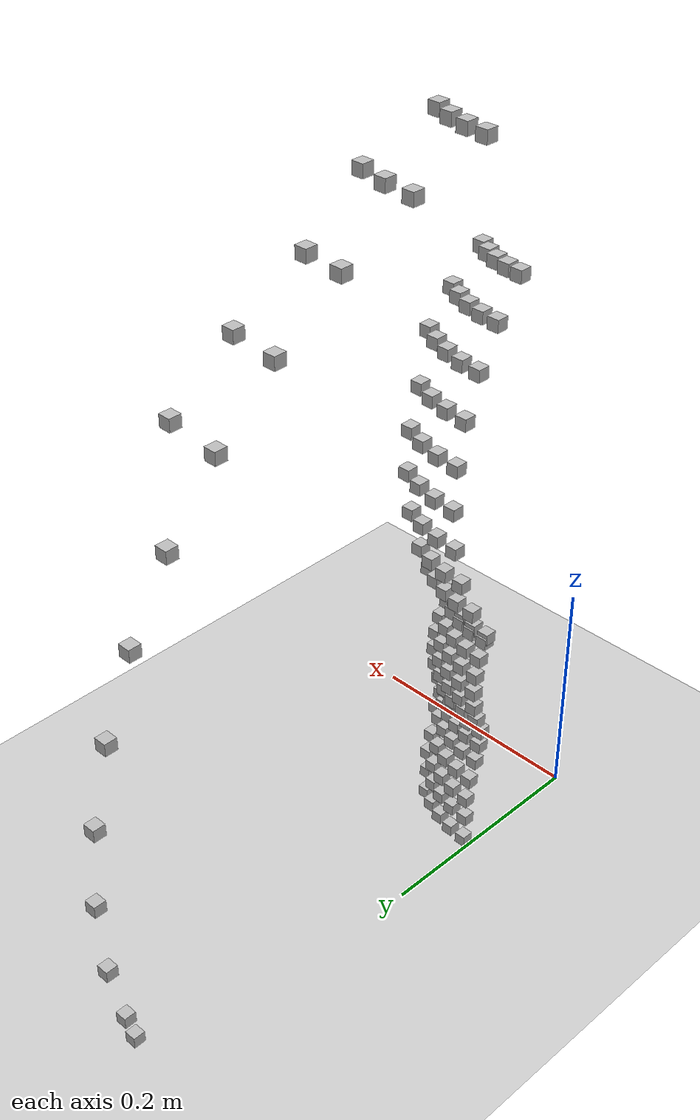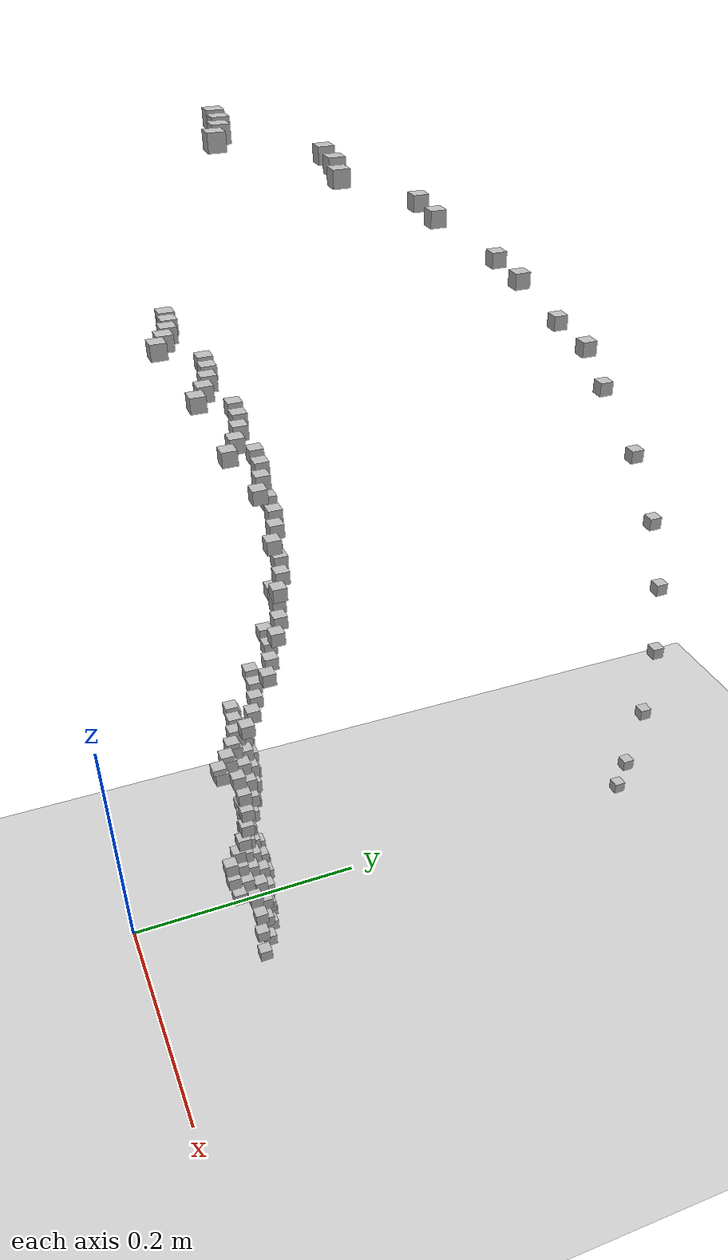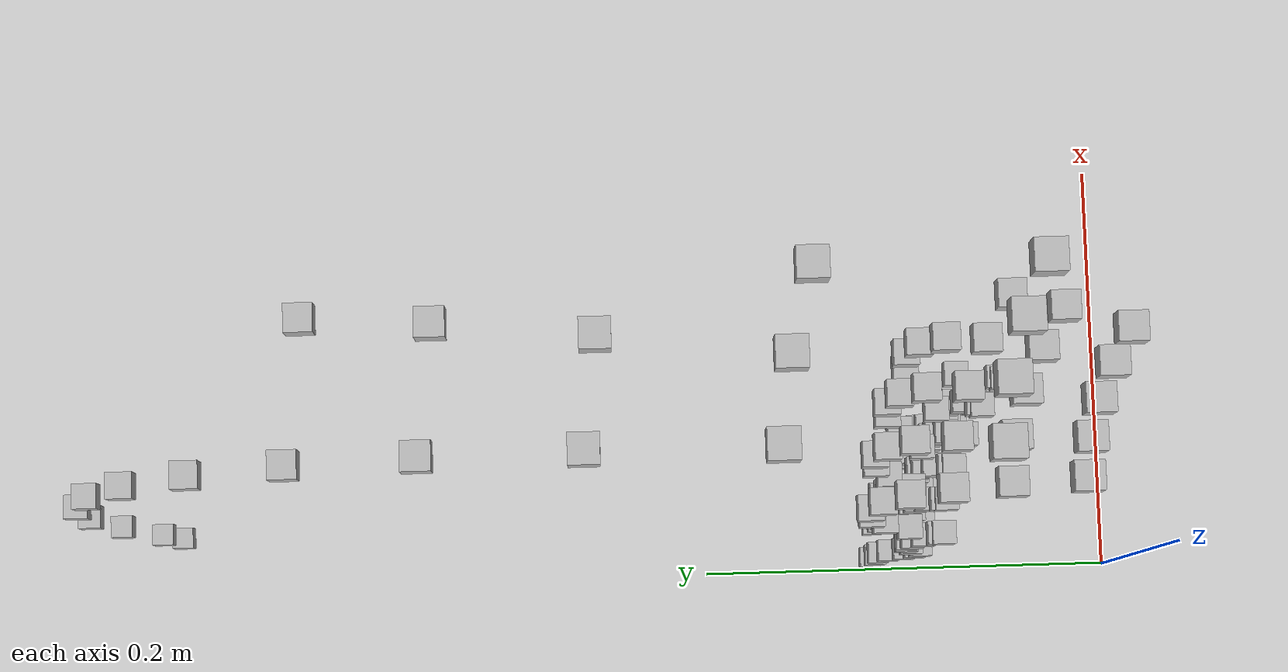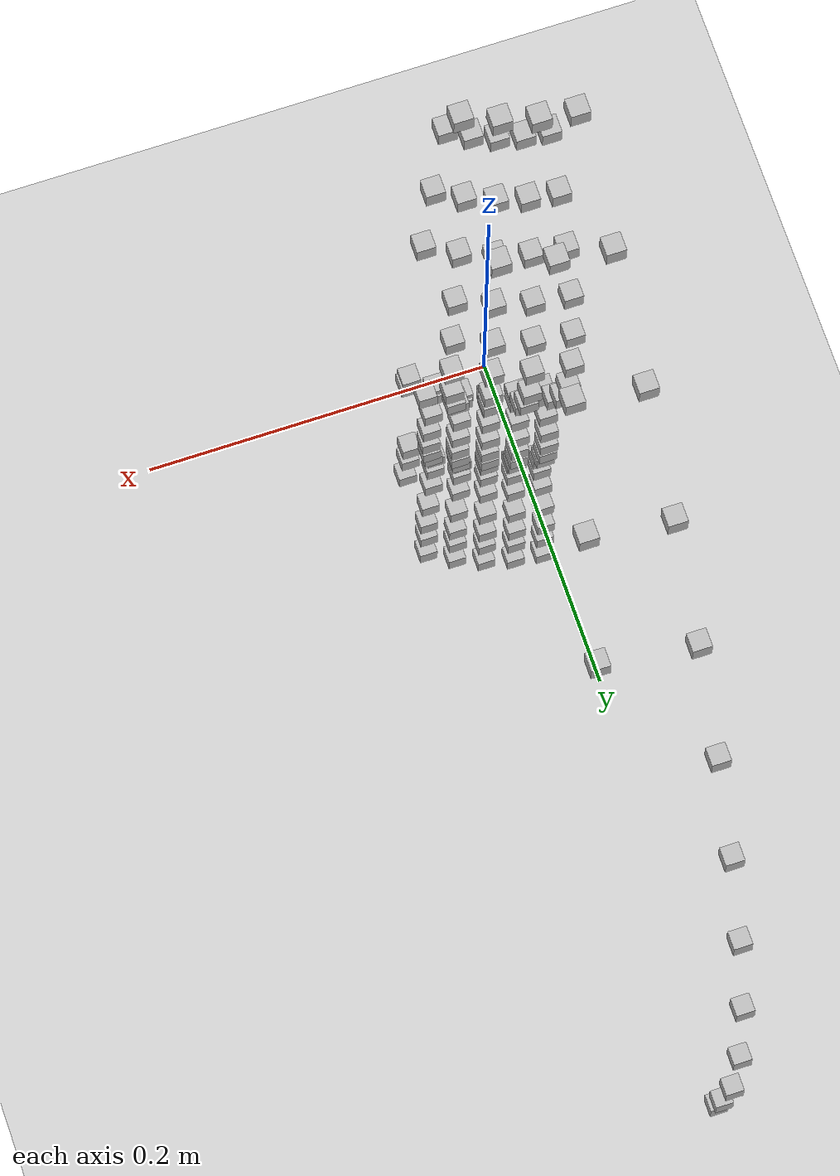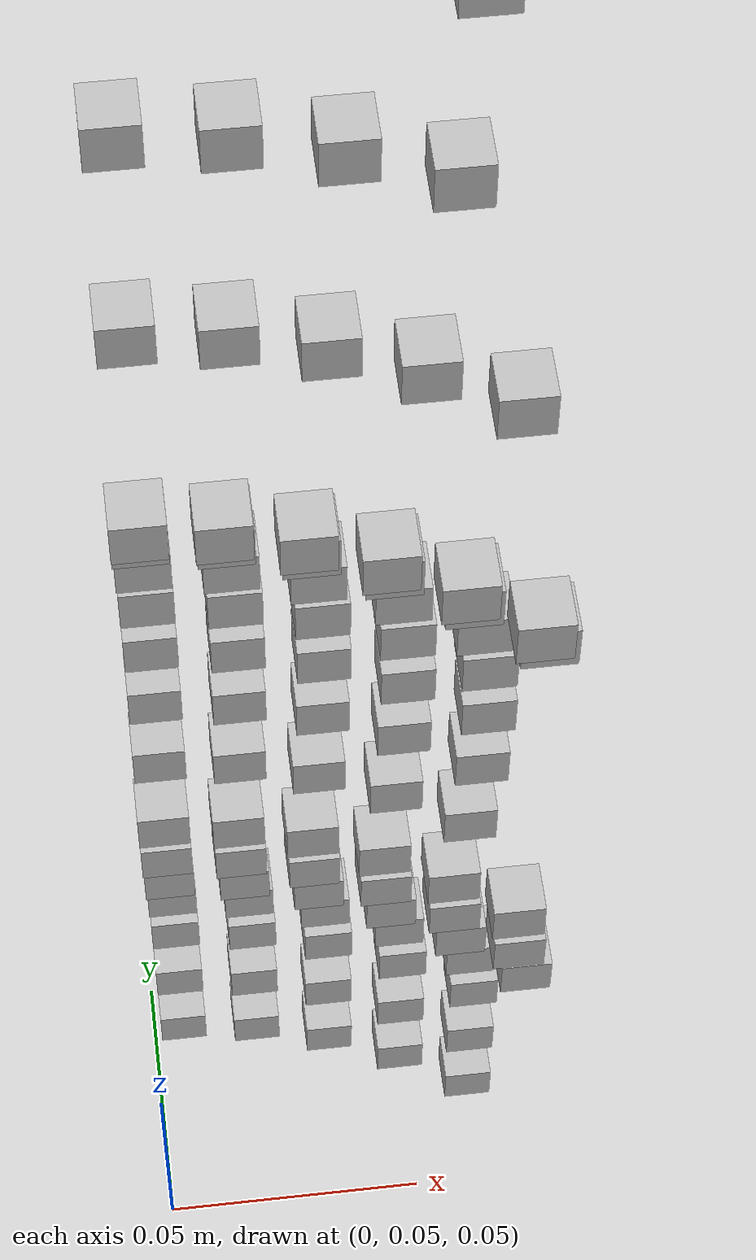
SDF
<sdf version="1.6">
 <world name="default">
  <model name="ground_plane">
   <static>1</static>
   <link name="link">
    <collision name="collision">
     <geometry><plane><normal>0 0 1</normal><size>100 100</size></plane></geometry>
     <surface>
      <contact><collide_bitmask>65535</collide_bitmask></contact>
      <friction><ode><mu>100</mu><mu2>50</mu2></ode></friction>
     </surface>
    </collision>
    <visual name="visual">
     <cast_shadows>0</cast_shadows>
     <geometry><plane><normal>0 0 1</normal><size>100 100</size></plane></geometry>
     <material>
      <script><uri>file://media/materials/scripts/gazebo.material</uri><name>Gazebo/Grey</name></script>
     </material>
    </visual>
   </link>
  </model>
  <model name="box_1685262135_6585927">
   <pose>0.02405991987954663 0.4590906199174173 0.031024085780011867 0.0 0.0 0.0</pose>
   <static>1</static>
   <link name="box_1685262135_6585927_link">
    <visual name="visual"><geometry><box><size>0.01 0.01 0.01</size></box></geometry></visual>
   </link>
  </model>
  <model name="box_1685262135_6593375">
   <pose>0.02434922557814993 0.46461090149700557 0.05746253559996678 0.0 0.0 0.0</pose>
   <static>1</static>
   <link name="box_1685262135_6593375_link">
    <visual name="visual"><geometry><box><size>0.01 0.01 0.01</size></box></geometry></visual>
   </link>
  </model>
  <model name="box_1685262135_6600685">
   <pose>0.024861322077616384 0.4743822848006321 0.11486971929344875 0.0 0.0 0.0</pose>
   <static>1</static>
   <link name="box_1685262135_6600685_link">
    <visual name="visual"><geometry><box><size>0.01 0.01 0.01</size></box></geometry></visual>
   </link>
  </model>
  <model name="box_1685262135_6607916">
   <pose>0.024994102927681092 0.4769158943502295 0.18152491402812204 0.0 0.0 0.0</pose>
   <static>1</static>
   <link name="box_1685262135_6607916_link">
    <visual name="visual"><geometry><box><size>0.01 0.01 0.01</size></box></geometry></visual>
   </link>
  </model>
  <model name="box_1685262135_6615384">
   <pose>0.02463967744634422 0.47015305329522683 0.24785452819062248 0.0 0.0 0.0</pose>
   <static>1</static>
   <link name="box_1685262135_6615384_link">
    <visual name="visual"><geometry><box><size>0.01 0.01 0.01</size></box></geometry></visual>
   </link>
  </model>
  <model name="box_1685262135_6622746">
   <pose>0.023804714339656072 0.45422100812730015 0.31265492137086764 0.0 0.0 0.0</pose>
   <static>1</static>
   <link name="box_1685262135_6622746_link">
    <visual name="visual"><geometry><box><size>0.01 0.01 0.01</size></box></geometry></visual>
   </link>
  </model>
  <model name="box_1685262135_663031">
   <pose>0.02250778680187117 0.42947415650474763 0.37450685986133164 0.0 0.0 0.0</pose>
   <static>1</static>
   <link name="box_1685262135_663031_link">
    <visual name="visual"><geometry><box><size>0.01 0.01 0.01</size></box></geometry></visual>
   </link>
  </model>
  <model name="box_1685262135_663697">
   <pose>0.06777512258908454 0.09679290623230354 0.005648136022940203 0.0 0.0 0.0</pose>
   <static>1</static>
   <link name="box_1685262135_663697_link">
    <visual name="visual"><geometry><box><size>0.01 0.01 0.01</size></box></geometry></visual>
   </link>
  </model>
  <model name="box_1685262135_663713">
   <pose>0.05364457084372939 0.10528339830121859 0.005648136022940203 0.0 0.0 0.0</pose>
   <static>1</static>
   <link name="box_1685262135_663713_link">
    <visual name="visual"><geometry><box><size>0.01 0.01 0.01</size></box></geometry></visual>
   </link>
  </model>
  <model name="box_1685262135_6637292">
   <pose>0.03846988854669599 0.111724668780291 0.005648136022940203 0.0 0.0 0.0</pose>
   <static>1</static>
   <link name="box_1685262135_6637292_link">
    <visual name="visual"><geometry><box><size>0.01 0.01 0.01</size></box></geometry></visual>
   </link>
  </model>
  <model name="box_1685262135_663745">
   <pose>0.02254643362795078 0.11599134566648217 0.005648136022940203 0.0 0.0 0.0</pose>
   <static>1</static>
   <link name="box_1685262135_663745_link">
    <visual name="visual"><geometry><box><size>0.01 0.01 0.01</size></box></geometry></visual>
   </link>
  </model>
  <model name="box_1685262135_663761">
   <pose>0.006184138024825646 0.1180003829474754 0.005648136022940203 0.0 0.0 0.0</pose>
   <static>1</static>
   <link name="box_1685262135_663761_link">
    <visual name="visual"><geometry><box><size>0.01 0.01 0.01</size></box></geometry></visual>
   </link>
  </model>
  <model name="box_1685262135_6645062">
   <pose>0.020769772299794632 0.3963108642253715 0.4324042100445494 0.0 0.0 0.0</pose>
   <static>1</static>
   <link name="box_1685262135_6645062_link">
    <visual name="visual"><geometry><box><size>0.01 0.01 0.01</size></box></geometry></visual>
   </link>
  </model>
  <model name="box_1685262135_6651661">
   <pose>0.06742874848931353 0.09629823275212847 0.02920890265866033 0.0 0.0 0.0</pose>
   <static>1</static>
   <link name="box_1685262135_6651661_link">
    <visual name="visual"><geometry><box><size>0.01 0.01 0.01</size></box></geometry></visual>
   </link>
  </model>
  <model name="box_1685262135_6651833">
   <pose>0.053370412875085725 0.10474533299179058 0.02920890265866033 0.0 0.0 0.0</pose>
   <static>1</static>
   <link name="box_1685262135_6651833_link">
    <visual name="visual"><geometry><box><size>0.01 0.01 0.01</size></box></geometry></visual>
   </link>
  </model>
  <model name="box_1685262135_6651995">
   <pose>0.038273282882189244 0.11115368447081783 0.02920890265866033 0.0 0.0 0.0</pose>
   <static>1</static>
   <link name="box_1685262135_6651995_link">
    <visual name="visual"><geometry><box><size>0.01 0.01 0.01</size></box></geometry></visual>
   </link>
  </model>
  <model name="box_1685262135_6652155">
   <pose>0.022431206973204956 0.11539855591706273 0.02920890265866033 0.0 0.0 0.0</pose>
   <static>1</static>
   <link name="box_1685262135_6652155_link">
    <visual name="visual"><geometry><box><size>0.01 0.01 0.01</size></box></geometry></visual>
   </link>
  </model>
  <model name="box_1685262135_665232">
   <pose>0.0061525331356069935 0.11739732573629379 0.02920890265866033 0.0 0.0 0.0</pose>
   <static>1</static>
   <link name="box_1685262135_665232_link">
    <visual name="visual"><geometry><box><size>0.01 0.01 0.01</size></box></geometry></visual>
   </link>
  </model>
  <model name="box_1685262135_6659718">
   <pose>0.06790078139408982 0.3493192376084867 0.4851615351605009 0.0 0.0 0.0</pose>
   <static>1</static>
   <link name="box_1685262135_6659718_link">
    <visual name="visual"><geometry><box><size>0.01 0.01 0.01</size></box></geometry></visual>
   </link>
  </model>
  <model name="box_1685262135_6659875">
   <pose>0.01862413413418988 0.35536964910506086 0.4851615351605009 0.0 0.0 0.0</pose>
   <static>1</static>
   <link name="box_1685262135_6659875_link">
    <visual name="visual"><geometry><box><size>0.01 0.01 0.01</size></box></geometry></visual>
   </link>
  </model>
  <model name="box_1685262135_666643">
   <pose>0.0675846397173679 0.0965208684987429 0.05028140928145608 0.0 0.0 0.0</pose>
   <static>1</static>
   <link name="box_1685262135_666643_link">
    <visual name="visual"><geometry><box><size>0.01 0.01 0.01</size></box></geometry></visual>
   </link>
  </model>
  <model name="box_1685262135_6666608">
   <pose>0.05349380207318399 0.10498749792824409 0.05028140928145608 0.0 0.0 0.0</pose>
   <static>1</static>
   <link name="box_1685262135_6666608_link">
    <visual name="visual"><geometry><box><size>0.01 0.01 0.01</size></box></geometry></visual>
   </link>
  </model>
  <model name="box_1685262135_6666772">
   <pose>0.03836176841994355 0.11141066513208088 0.05028140928145608 0.0 0.0 0.0</pose>
   <static>1</static>
   <link name="box_1685262135_6666772_link">
    <visual name="visual"><geometry><box><size>0.01 0.01 0.01</size></box></geometry></visual>
   </link>
  </model>
  <model name="box_1685262135_6666934">
   <pose>0.022483066580273728 0.11566535046687501 0.05028140928145608 0.0 0.0 0.0</pose>
   <static>1</static>
   <link name="box_1685262135_6666934_link">
    <visual name="visual"><geometry><box><size>0.01 0.01 0.01</size></box></geometry></visual>
   </link>
  </model>
  <model name="box_1685262135_6667092">
   <pose>0.006166757423728061 0.1176687413222175 0.05028140928145608 0.0 0.0 0.0</pose>
   <static>1</static>
   <link name="box_1685262135_6667092_link">
    <visual name="visual"><geometry><box><size>0.01 0.01 0.01</size></box></geometry></visual>
   </link>
  </model>
  <model name="box_1685262135_6674433">
   <pose>0.058750438553163024 0.30224480459869163 0.5316791207351375 0.0 0.0 0.0</pose>
   <static>1</static>
   <link name="box_1685262135_6674433_link">
    <visual name="visual"><geometry><box><size>0.01 0.01 0.01</size></box></geometry></visual>
   </link>
  </model>
  <model name="box_1685262135_6674592">
   <pose>0.016114336618692094 0.3074798596533271 0.5316791207351375 0.0 0.0 0.0</pose>
   <static>1</static>
   <link name="box_1685262135_6674592_link">
    <visual name="visual"><geometry><box><size>0.01 0.01 0.01</size></box></geometry></visual>
   </link>
  </model>
  <model name="box_1685262135_668113">
   <pose>0.06590311034240665 0.09411939567361367 0.06994559093984248 0.0 0.0 0.0</pose>
   <static>1</static>
   <link name="box_1685262135_668113_link">
    <visual name="visual"><geometry><box><size>0.01 0.01 0.01</size></box></geometry></visual>
   </link>
  </model>
  <model name="box_1685262135_668129">
   <pose>0.05216285764645345 0.1023753724140992 0.06994559093984248 0.0 0.0 0.0</pose>
   <static>1</static>
   <link name="box_1685262135_668129_link">
    <visual name="visual"><geometry><box><size>0.01 0.01 0.01</size></box></geometry></visual>
   </link>
  </model>
  <model name="box_1685262135_668147">
   <pose>0.03740731426078319 0.10863872898080444 0.06994559093984248 0.0 0.0 0.0</pose>
   <static>1</static>
   <link name="box_1685262135_668147_link">
    <visual name="visual"><geometry><box><size>0.01 0.01 0.01</size></box></geometry></visual>
   </link>
  </model>
  <model name="box_1685262135_6681635">
   <pose>0.02192368005321609 0.11278755626262096 0.06994559093984248 0.0 0.0 0.0</pose>
   <static>1</static>
   <link name="box_1685262135_6681635_link">
    <visual name="visual"><geometry><box><size>0.01 0.01 0.01</size></box></geometry></visual>
   </link>
  </model>
  <model name="box_1685262135_6681795">
   <pose>0.00601332635122958 0.11474110205572927 0.06994559093984248 0.0 0.0 0.0</pose>
   <static>1</static>
   <link name="box_1685262135_6681795_link">
    <visual name="visual"><geometry><box><size>0.01 0.01 0.01</size></box></geometry></visual>
   </link>
  </model>
  <model name="box_1685262135_668917">
   <pose>0.04846126639520362 0.2493116026524517 0.5710245451470004 0.0 0.0 0.0</pose>
   <static>1</static>
   <link name="box_1685262135_668917_link">
    <visual name="visual"><geometry><box><size>0.01 0.01 0.01</size></box></geometry></visual>
   </link>
  </model>
  <model name="box_1685262135_668934">
   <pose>0.01329217583548368 0.2536298239941814 0.5710245451470004 0.0 0.0 0.0</pose>
   <static>1</static>
   <link name="box_1685262135_668934_link">
    <visual name="visual"><geometry><box><size>0.01 0.01 0.01</size></box></geometry></visual>
   </link>
  </model>
  <model name="box_1685262135_6697845">
   <pose>0.07450634740983107 0.0798982756605314 0.08776207523471741 0.0 0.0 0.0</pose>
   <static>1</static>
   <link name="box_1685262135_6697845_link">
    <visual name="visual"><geometry><box><size>0.01 0.01 0.01</size></box></geometry></visual>
   </link>
  </model>
  <model name="box_1685262135_6698117">
   <pose>0.06266156597348364 0.08948999054437017 0.08776207523471741 0.0 0.0 0.0</pose>
   <static>1</static>
   <link name="box_1685262135_6698117_link">
    <visual name="visual"><geometry><box><size>0.01 0.01 0.01</size></box></geometry></visual>
   </link>
  </model>
  <model name="box_1685262135_6698396">
   <pose>0.049597148431937216 0.09733988455561828 0.08776207523471741 0.0 0.0 0.0</pose>
   <static>1</static>
   <link name="box_1685262135_6698396_link">
    <visual name="visual"><geometry><box><size>0.01 0.01 0.01</size></box></geometry></visual>
   </link>
  </model>
  <model name="box_1685262135_6698642">
   <pose>0.03556737881208329 0.10329516843646885 0.08776207523471741 0.0 0.0 0.0</pose>
   <static>1</static>
   <link name="box_1685262135_6698642_link">
    <visual name="visual"><geometry><box><size>0.01 0.01 0.01</size></box></geometry></visual>
   </link>
  </model>
  <model name="box_1685262135_669888">
   <pose>0.02084533062094593 0.1072399293602162 0.08776207523471741 0.0 0.0 0.0</pose>
   <static>1</static>
   <link name="box_1685262135_669888_link">
    <visual name="visual"><geometry><box><size>0.01 0.01 0.01</size></box></geometry></visual>
   </link>
  </model>
  <model name="box_1685262135_6699133">
   <pose>0.005717551780483991 0.10909738704257856 0.08776207523471741 0.0 0.0 0.0</pose>
   <static>1</static>
   <link name="box_1685262135_6699133_link">
    <visual name="visual"><geometry><box><size>0.01 0.01 0.01</size></box></geometry></visual>
   </link>
  </model>
  <model name="box_1685262135_6706667">
   <pose>0.0634804074797817 0.18436048992207563 0.6025204345093003 0.0 0.0 0.0</pose>
   <static>1</static>
   <link name="box_1685262135_6706667_link">
    <visual name="visual"><geometry><box><size>0.01 0.01 0.01</size></box></geometry></visual>
   </link>
  </model>
  <model name="box_1685262135_6706836">
   <pose>0.037204599440959205 0.19140107146655333 0.6025204345093003 0.0 0.0 0.0</pose>
   <static>1</static>
   <link name="box_1685262135_6706836_link">
    <visual name="visual"><geometry><box><size>0.01 0.01 0.01</size></box></geometry></visual>
   </link>
  </model>
  <model name="box_1685262135_670703">
   <pose>0.010204646193623056 0.19471624887042646 0.6025204345093003 0.0 0.0 0.0</pose>
   <static>1</static>
   <link name="box_1685262135_670703_link">
    <visual name="visual"><geometry><box><size>0.01 0.01 0.01</size></box></geometry></visual>
   </link>
  </model>
  <model name="box_1685262135_6714404">
   <pose>0.07203180801883019 0.07724465704589852 0.10333120046485805 0.0 0.0 0.0</pose>
   <static>1</static>
   <link name="box_1685262135_6714404_link">
    <visual name="visual"><geometry><box><size>0.01 0.01 0.01</size></box></geometry></visual>
   </link>
  </model>
  <model name="box_1685262135_6714575">
   <pose>0.06058042096109608 0.08651780744318757 0.10333120046485805 0.0 0.0 0.0</pose>
   <static>1</static>
   <link name="box_1685262135_6714575_link">
    <visual name="visual"><geometry><box><size>0.01 0.01 0.01</size></box></geometry></visual>
   </link>
  </model>
  <model name="box_1685262135_6714735">
   <pose>0.04794990491856171 0.0941069871311423 0.10333120046485805 0.0 0.0 0.0</pose>
   <static>1</static>
   <link name="box_1685262135_6714735_link">
    <visual name="visual"><geometry><box><size>0.01 0.01 0.01</size></box></geometry></visual>
   </link>
  </model>
  <model name="box_1685262135_6714897">
   <pose>0.03438609851899599 0.09986448135970062 0.10333120046485805 0.0 0.0 0.0</pose>
   <static>1</static>
   <link name="box_1685262135_6714897_link">
    <visual name="visual"><geometry><box><size>0.01 0.01 0.01</size></box></geometry></visual>
   </link>
  </model>
  <model name="box_1685262135_6715064">
   <pose>0.020153005825365344 0.10367822705275627 0.10333120046485805 0.0 0.0 0.0</pose>
   <static>1</static>
   <link name="box_1685262135_6715064_link">
    <visual name="visual"><geometry><box><size>0.01 0.01 0.01</size></box></geometry></visual>
   </link>
  </model>
  <model name="box_1685262135_6715267">
   <pose>0.005527657797048321 0.10547399398846534 0.10333120046485805 0.0 0.0 0.0</pose>
   <static>1</static>
   <link name="box_1685262135_6715267_link">
    <visual name="visual"><geometry><box><size>0.01 0.01 0.01</size></box></geometry></visual>
   </link>
  </model>
  <model name="box_1685262135_6722112">
   <pose>0.06004122595787038 0.11783754082832494 0.6254485040649695 0.0 0.0 0.0</pose>
   <static>1</static>
   <link name="box_1685262135_6722112_link">
    <visual name="visual"><geometry><box><size>0.01 0.01 0.01</size></box></geometry></visual>
   </link>
  </model>
  <model name="box_1685262135_6722279">
   <pose>0.043057092907590244 0.12504687758332209 0.6254485040649695 0.0 0.0 0.0</pose>
   <static>1</static>
   <link name="box_1685262135_6722279_link">
    <visual name="visual"><geometry><box><size>0.01 0.01 0.01</size></box></geometry></visual>
   </link>
  </model>
  <model name="box_1685262135_672244">
   <pose>0.025234902520581134 0.1298223191048749 0.6254485040649695 0.0 0.0 0.0</pose>
   <static>1</static>
   <link name="box_1685262135_672244_link">
    <visual name="visual"><geometry><box><size>0.01 0.01 0.01</size></box></geometry></visual>
   </link>
  </model>
  <model name="box_1685262135_6722598">
   <pose>0.0069215434602850805 0.13207091685575056 0.6254485040649695 0.0 0.0 0.0</pose>
   <static>1</static>
   <link name="box_1685262135_6722598_link">
    <visual name="visual"><geometry><box><size>0.01 0.01 0.01</size></box></geometry></visual>
   </link>
  </model>
  <model name="box_1685262135_672971">
   <pose>0.07121021793565768 0.07636360954823775 0.1175214826546544 0.0 0.0 0.0</pose>
   <static>1</static>
   <link name="box_1685262135_672971_link">
    <visual name="visual"><geometry><box><size>0.01 0.01 0.01</size></box></geometry></visual>
   </link>
  </model>
  <model name="box_1685262135_6729875">
   <pose>0.059889444648478174 0.0855309909996163 0.1175214826546544 0.0 0.0 0.0</pose>
   <static>1</static>
   <link name="box_1685262135_6729875_link">
    <visual name="visual"><geometry><box><size>0.01 0.01 0.01</size></box></geometry></visual>
   </link>
  </model>
  <model name="box_1685262135_6730034">
   <pose>0.0474029914444496 0.09303360900124755 0.1175214826546544 0.0 0.0 0.0</pose>
   <static>1</static>
   <link name="box_1685262135_6730034_link">
    <visual name="visual"><geometry><box><size>0.01 0.01 0.01</size></box></geometry></visual>
   </link>
  </model>
  <model name="box_1685262135_67302">
   <pose>0.033993892932058414 0.09872543362783129 0.1175214826546544 0.0 0.0 0.0</pose>
   <static>1</static>
   <link name="box_1685262135_67302_link">
    <visual name="visual"><geometry><box><size>0.01 0.01 0.01</size></box></geometry></visual>
   </link>
  </model>
  <model name="box_1685262135_6730368">
   <pose>0.0199231419612248 0.1024956799873656 0.1175214826546544 0.0 0.0 0.0</pose>
   <static>1</static>
   <link name="box_1685262135_6730368_link">
    <visual name="visual"><geometry><box><size>0.01 0.01 0.01</size></box></geometry></visual>
   </link>
  </model>
  <model name="box_1685262135_6730535">
   <pose>0.005464609694354037 0.10427096452305379 0.1175214826546544 0.0 0.0 0.0</pose>
   <static>1</static>
   <link name="box_1685262135_6730535_link">
    <visual name="visual"><geometry><box><size>0.01 0.01 0.01</size></box></geometry></visual>
   </link>
  </model>
  <model name="box_1685262135_674516">
   <pose>0.0632213446323552 0.09028943732025434 0.13255102465284446 0.0 0.0 0.0</pose>
   <static>1</static>
   <link name="box_1685262135_674516_link">
    <visual name="visual"><geometry><box><size>0.01 0.01 0.01</size></box></geometry></visual>
   </link>
  </model>
  <model name="box_1685262135_674536">
   <pose>0.050040217876528355 0.09820945730224118 0.13255102465284446 0.0 0.0 0.0</pose>
   <static>1</static>
   <link name="box_1685262135_674536_link">
    <visual name="visual"><geometry><box><size>0.01 0.01 0.01</size></box></geometry></visual>
   </link>
  </model>
  <model name="box_1685262135_6745532">
   <pose>0.0358851151996391 0.10421794190944184 0.13255102465284446 0.0 0.0 0.0</pose>
   <static>1</static>
   <link name="box_1685262135_6745532_link">
    <visual name="visual"><geometry><box><size>0.01 0.01 0.01</size></box></geometry></visual>
   </link>
  </model>
  <model name="box_1685262135_6745691">
   <pose>0.021031549574102394 0.10819794282352709 0.13255102465284446 0.0 0.0 0.0</pose>
   <static>1</static>
   <link name="box_1685262135_6745691_link">
    <visual name="visual"><geometry><box><size>0.01 0.01 0.01</size></box></geometry></visual>
   </link>
  </model>
  <model name="box_1685262135_6745856">
   <pose>0.005768628759138855 0.11007199385388819 0.13255102465284446 0.0 0.0 0.0</pose>
   <static>1</static>
   <link name="box_1685262135_6745856_link">
    <visual name="visual"><geometry><box><size>0.01 0.01 0.01</size></box></geometry></visual>
   </link>
  </model>
  <model name="box_1685262135_6760757">
   <pose>0.06530834040379324 0.09326997617131282 0.14825398363050718 0.0 0.0 0.0</pose>
   <static>1</static>
   <link name="box_1685262135_6760757_link">
    <visual name="visual"><geometry><box><size>0.01 0.01 0.01</size></box></geometry></visual>
   </link>
  </model>
  <model name="box_1685262135_676092">
   <pose>0.051692092314148376 0.10145144342728965 0.14825398363050718 0.0 0.0 0.0</pose>
   <static>1</static>
   <link name="box_1685262135_676092_link">
    <visual name="visual"><geometry><box><size>0.01 0.01 0.01</size></box></geometry></visual>
   </link>
  </model>
  <model name="box_1685262135_6761084">
   <pose>0.037069716446492144 0.10765827373626079 0.14825398363050718 0.0 0.0 0.0</pose>
   <static>1</static>
   <link name="box_1685262135_6761084_link">
    <visual name="visual"><geometry><box><size>0.01 0.01 0.01</size></box></geometry></visual>
   </link>
  </model>
  <model name="box_1685262135_6761243">
   <pose>0.021725820714382418 0.11176965820642695 0.14825398363050718 0.0 0.0 0.0</pose>
   <static>1</static>
   <link name="box_1685262135_6761243_link">
    <visual name="visual"><geometry><box><size>0.01 0.01 0.01</size></box></geometry></visual>
   </link>
  </model>
  <model name="box_1685262135_6761405">
   <pose>0.005959056594822017 0.11370557341570685 0.14825398363050718 0.0 0.0 0.0</pose>
   <static>1</static>
   <link name="box_1685262135_6761405_link">
    <visual name="visual"><geometry><box><size>0.01 0.01 0.01</size></box></geometry></visual>
   </link>
  </model>
  <model name="box_1685262135_6769307">
   <pose>0.06610847997756625 0.09441269390871221 0.16428489958480497 0.0 0.0 0.0</pose>
   <static>1</static>
   <link name="box_1685262135_6769307_link">
    <visual name="visual"><geometry><box><size>0.01 0.01 0.01</size></box></geometry></visual>
   </link>
  </model>
  <model name="box_1685262135_676947">
   <pose>0.05232540941355633 0.10269439821990374 0.16428489958480497 0.0 0.0 0.0</pose>
   <static>1</static>
   <link name="box_1685262135_676947_link">
    <visual name="visual"><geometry><box><size>0.01 0.01 0.01</size></box></geometry></visual>
   </link>
  </model>
  <model name="box_1685262135_6769633">
   <pose>0.03752388427458259 0.10897727288289147 0.16428489958480497 0.0 0.0 0.0</pose>
   <static>1</static>
   <link name="box_1685262135_6769633_link">
    <visual name="visual"><geometry><box><size>0.01 0.01 0.01</size></box></geometry></visual>
   </link>
  </model>
  <model name="box_1685262135_6769795">
   <pose>0.021991999410989827 0.11313902888902434 0.16428489958480497 0.0 0.0 0.0</pose>
   <static>1</static>
   <link name="box_1685262135_6769795_link">
    <visual name="visual"><geometry><box><size>0.01 0.01 0.01</size></box></geometry></visual>
   </link>
  </model>
  <model name="box_1685262135_676996">
   <pose>0.006032065294390704 0.11509866239157025 0.16428489958480497 0.0 0.0 0.0</pose>
   <static>1</static>
   <link name="box_1685262135_676996_link">
    <visual name="visual"><geometry><box><size>0.01 0.01 0.01</size></box></geometry></visual>
   </link>
  </model>
  <model name="box_1685262135_6776707">
   <pose>0.06562766617311366 0.09372602063226917 0.18035913689155542 0.0 0.0 0.0</pose>
   <static>1</static>
   <link name="box_1685262135_6776707_link">
    <visual name="visual"><geometry><box><size>0.01 0.01 0.01</size></box></geometry></visual>
   </link>
  </model>
  <model name="box_1685262135_6776865">
   <pose>0.051944841305225774 0.10194749125243398 0.18035913689155542 0.0 0.0 0.0</pose>
   <static>1</static>
   <link name="box_1685262135_6776865_link">
    <visual name="visual"><geometry><box><size>0.01 0.01 0.01</size></box></geometry></visual>
   </link>
  </model>
  <model name="box_1685262135_6777031">
   <pose>0.0372509691877129 0.10818466991892269 0.18035913689155542 0.0 0.0 0.0</pose>
   <static>1</static>
   <link name="box_1685262135_6777031_link">
    <visual name="visual"><geometry><box><size>0.01 0.01 0.01</size></box></geometry></visual>
   </link>
  </model>
  <model name="box_1685262135_6777196">
   <pose>0.02183204932731062 0.1123161570436777 0.18035913689155542 0.0 0.0 0.0</pose>
   <static>1</static>
   <link name="box_1685262135_6777196_link">
    <visual name="visual"><geometry><box><size>0.01 0.01 0.01</size></box></geometry></visual>
   </link>
  </model>
  <model name="box_1685262135_6777353">
   <pose>0.005988193460340269 0.11426153792931255 0.18035913689155542 0.0 0.0 0.0</pose>
   <static>1</static>
   <link name="box_1685262135_6777353_link">
    <visual name="visual"><geometry><box><size>0.01 0.01 0.01</size></box></geometry></visual>
   </link>
  </model>
  <model name="box_1685262135_6784303">
   <pose>0.06386685680761015 0.09121132424667246 0.19617448160834577 0.0 0.0 0.0</pose>
   <static>1</static>
   <link name="box_1685262135_6784303_link">
    <visual name="visual"><geometry><box><size>0.01 0.01 0.01</size></box></geometry></visual>
   </link>
  </model>
  <model name="box_1685262135_678449">
   <pose>0.05055114610938309 0.09921221041960106 0.19617448160834577 0.0 0.0 0.0</pose>
   <static>1</static>
   <link name="box_1685262135_678449_link">
    <visual name="visual"><geometry><box><size>0.01 0.01 0.01</size></box></geometry></visual>
   </link>
  </model>
  <model name="box_1685262135_6784651">
   <pose>0.03625151485321335 0.10528204376892883 0.19617448160834577 0.0 0.0 0.0</pose>
   <static>1</static>
   <link name="box_1685262135_6784651_link">
    <visual name="visual"><geometry><box><size>0.01 0.01 0.01</size></box></geometry></visual>
   </link>
  </model>
  <model name="box_1685262135_678481">
   <pose>0.021246289095912776 0.10930268189284421 0.19617448160834577 0.0 0.0 0.0</pose>
   <static>1</static>
   <link name="box_1685262135_678481_link">
    <visual name="visual"><geometry><box><size>0.01 0.01 0.01</size></box></geometry></visual>
   </link>
  </model>
  <model name="box_1685262135_6784973">
   <pose>0.005827528488655906 0.11119586764367324 0.19617448160834577 0.0 0.0 0.0</pose>
   <static>1</static>
   <link name="box_1685262135_6784973_link">
    <visual name="visual"><geometry><box><size>0.01 0.01 0.01</size></box></geometry></visual>
   </link>
  </model>
  <model name="box_1685262135_679143">
   <pose>0.07235523046385095 0.07759148515605845 0.2113835132273968 0.0 0.0 0.0</pose>
   <static>1</static>
   <link name="box_1685262135_679143_link">
    <visual name="visual"><geometry><box><size>0.01 0.01 0.01</size></box></geometry></visual>
   </link>
  </model>
  <model name="box_1685262135_6791613">
   <pose>0.06085242673752338 0.08690627195061455 0.2113835132273968 0.0 0.0 0.0</pose>
   <static>1</static>
   <link name="box_1685262135_6791613_link">
    <visual name="visual"><geometry><box><size>0.01 0.01 0.01</size></box></geometry></visual>
   </link>
  </model>
  <model name="box_1685262135_6791782">
   <pose>0.04816519974335939 0.0945295270160711 0.2113835132273968 0.0 0.0 0.0</pose>
   <static>1</static>
   <link name="box_1685262135_6791782_link">
    <visual name="visual"><geometry><box><size>0.01 0.01 0.01</size></box></geometry></visual>
   </link>
  </model>
  <model name="box_1685262135_679195">
   <pose>0.03454049192329359 0.1003128723639031 0.2113835132273968 0.0 0.0 0.0</pose>
   <static>1</static>
   <link name="box_1685262135_679195_link">
    <visual name="visual"><geometry><box><size>0.01 0.01 0.01</size></box></geometry></visual>
   </link>
  </model>
  <model name="box_1685262135_679211">
   <pose>0.0202434927171681 0.10414374175537283 0.2113835132273968 0.0 0.0 0.0</pose>
   <static>1</static>
   <link name="box_1685262135_679211_link">
    <visual name="visual"><geometry><box><size>0.01 0.01 0.01</size></box></geometry></visual>
   </link>
  </model>
  <model name="box_1685262135_6792274">
   <pose>0.005552476951934618 0.10594757167532468 0.2113835132273968 0.0 0.0 0.0</pose>
   <static>1</static>
   <link name="box_1685262135_6792274_link">
    <visual name="visual"><geometry><box><size>0.01 0.01 0.01</size></box></geometry></visual>
   </link>
  </model>
  <model name="box_1685262135_6798947">
   <pose>0.07123831734230952 0.07639374247270143 0.21508165296930842 0.0 0.0 0.0</pose>
   <static>1</static>
   <link name="box_1685262135_6798947_link">
    <visual name="visual"><geometry><box><size>0.01 0.01 0.01</size></box></geometry></visual>
   </link>
  </model>
  <model name="box_1685262135_6799133">
   <pose>0.05991307690109746 0.08556474135408935 0.21508165296930842 0.0 0.0 0.0</pose>
   <static>1</static>
   <link name="box_1685262135_6799133_link">
    <visual name="visual"><geometry><box><size>0.01 0.01 0.01</size></box></geometry></visual>
   </link>
  </model>
  <model name="box_1685262135_6799302">
   <pose>0.047421696568120404 0.09307031987347064 0.21508165296930842 0.0 0.0 0.0</pose>
   <static>1</static>
   <link name="box_1685262135_6799302_link">
    <visual name="visual"><geometry><box><size>0.01 0.01 0.01</size></box></geometry></visual>
   </link>
  </model>
  <model name="box_1685262135_6799464">
   <pose>0.034007306852825235 0.09876439048243457 0.21508165296930842 0.0 0.0 0.0</pose>
   <static>1</static>
   <link name="box_1685262135_6799464_link">
    <visual name="visual"><geometry><box><size>0.01 0.01 0.01</size></box></geometry></visual>
   </link>
  </model>
  <model name="box_1685262135_6799629">
   <pose>0.019931003592378024 0.10253612457348699 0.21508165296930842 0.0 0.0 0.0</pose>
   <static>1</static>
   <link name="box_1685262135_6799629_link">
    <visual name="visual"><geometry><box><size>0.01 0.01 0.01</size></box></geometry></visual>
   </link>
  </model>
  <model name="box_1685262135_6799788">
   <pose>0.005466766018185737 0.10431210963282947 0.21508165296930842 0.0 0.0 0.0</pose>
   <static>1</static>
   <link name="box_1685262135_6799788_link">
    <visual name="visual"><geometry><box><size>0.01 0.01 0.01</size></box></geometry></visual>
   </link>
  </model>
  <model name="box_1685262135_6806371">
   <pose>0.07012641947850527 0.10015090619818869 0.24636117300793503 0.0 0.0 0.0</pose>
   <static>1</static>
   <link name="box_1685262135_6806371_link">
    <visual name="visual"><geometry><box><size>0.01 0.01 0.01</size></box></geometry></visual>
   </link>
  </model>
  <model name="box_1685262135_6806612">
   <pose>0.055505641805178085 0.10893595572164838 0.24636117300793503 0.0 0.0 0.0</pose>
   <static>1</static>
   <link name="box_1685262135_6806612_link">
    <visual name="visual"><geometry><box><size>0.01 0.01 0.01</size></box></geometry></visual>
   </link>
  </model>
  <model name="box_1685262135_6806788">
   <pose>0.03980450995084489 0.11560069077979923 0.24636117300793503 0.0 0.0 0.0</pose>
   <static>1</static>
   <link name="box_1685262135_6806788_link">
    <visual name="visual"><geometry><box><size>0.01 0.01 0.01</size></box></geometry></visual>
   </link>
  </model>
  <model name="box_1685262135_680695">
   <pose>0.023328628587277488 0.12001538988575812 0.24636117300793503 0.0 0.0 0.0</pose>
   <static>1</static>
   <link name="box_1685262135_680695_link">
    <visual name="visual"><geometry><box><size>0.01 0.01 0.01</size></box></geometry></visual>
   </link>
  </model>
  <model name="box_1685262135_6807113">
   <pose>0.006398682004180437 0.12209412594307331 0.24636117300793503 0.0 0.0 0.0</pose>
   <static>1</static>
   <link name="box_1685262135_6807113_link">
    <visual name="visual"><geometry><box><size>0.01 0.01 0.01</size></box></geometry></visual>
   </link>
  </model>
  <model name="box_1685262135_6813965">
   <pose>0.061551867763079 0.12080234230528265 0.2798396861917631 0.0 0.0 0.0</pose>
   <static>1</static>
   <link name="box_1685262135_6813965_link">
    <visual name="visual"><geometry><box><size>0.01 0.01 0.01</size></box></geometry></visual>
   </link>
  </model>
  <model name="box_1685262135_6814198">
   <pose>0.04414041263531528 0.12819306652058193 0.2798396861917631 0.0 0.0 0.0</pose>
   <static>1</static>
   <link name="box_1685262135_6814198_link">
    <visual name="visual"><geometry><box><size>0.01 0.01 0.01</size></box></geometry></visual>
   </link>
  </model>
  <model name="box_1685262135_6814394">
   <pose>0.02586981458458034 0.13308865851351 0.2798396861917631 0.0 0.0 0.0</pose>
   <static>1</static>
   <link name="box_1685262135_6814394_link">
    <visual name="visual"><geometry><box><size>0.01 0.01 0.01</size></box></geometry></visual>
   </link>
  </model>
  <model name="box_1685262135_6814597">
   <pose>0.0070956900194344835 0.13539383115457787 0.2798396861917631 0.0 0.0 0.0</pose>
   <static>1</static>
   <link name="box_1685262135_6814597_link">
    <visual name="visual"><geometry><box><size>0.01 0.01 0.01</size></box></geometry></visual>
   </link>
  </model>
  <model name="box_1685262135_6821473">
   <pose>0.06541331307023501 0.1283808554315406 0.314821790288947 0.0 0.0 0.0</pose>
   <static>1</static>
   <link name="box_1685262135_6821473_link">
    <visual name="visual"><geometry><box><size>0.01 0.01 0.01</size></box></geometry></visual>
   </link>
  </model>
  <model name="box_1685262135_6821651">
   <pose>0.046909553449735984 0.13623523539563862 0.314821790288947 0.0 0.0 0.0</pose>
   <static>1</static>
   <link name="box_1685262135_6821651_link">
    <visual name="visual"><geometry><box><size>0.01 0.01 0.01</size></box></geometry></visual>
   </link>
  </model>
  <model name="box_1685262135_682182">
   <pose>0.02749275273016403 0.141437951468044 0.314821790288947 0.0 0.0 0.0</pose>
   <static>1</static>
   <link name="box_1685262135_682182_link">
    <visual name="visual"><geometry><box><size>0.01 0.01 0.01</size></box></geometry></visual>
   </link>
  </model>
  <model name="box_1685262135_682198">
   <pose>0.00754083685124215 0.1438877386984091 0.314821790288947 0.0 0.0 0.0</pose>
   <static>1</static>
   <link name="box_1685262135_682198_link">
    <visual name="visual"><geometry><box><size>0.01 0.01 0.01</size></box></geometry></visual>
   </link>
  </model>
  <model name="box_1685262135_6828778">
   <pose>0.06702831594730951 0.13155047704450804 0.3506667056619606 0.0 0.0 0.0</pose>
   <static>1</static>
   <link name="box_1685262135_6828778_link">
    <visual name="visual"><geometry><box><size>0.01 0.01 0.01</size></box></geometry></visual>
   </link>
  </model>
  <model name="box_1685262135_6828938">
   <pose>0.0480677131610819 0.13959877542741533 0.3506667056619606 0.0 0.0 0.0</pose>
   <static>1</static>
   <link name="box_1685262135_6828938_link">
    <visual name="visual"><geometry><box><size>0.01 0.01 0.01</size></box></geometry></visual>
   </link>
  </model>
  <model name="box_1685262135_6829123">
   <pose>0.028171527014387163 0.1449299424378815 0.3506667056619606 0.0 0.0 0.0</pose>
   <static>1</static>
   <link name="box_1685262135_6829123_link">
    <visual name="visual"><geometry><box><size>0.01 0.01 0.01</size></box></geometry></visual>
   </link>
  </model>
  <model name="box_1685262135_6829288">
   <pose>0.0077270141389944045 0.14744021297416035 0.3506667056619606 0.0 0.0 0.0</pose>
   <static>1</static>
   <link name="box_1685262135_6829288_link">
    <visual name="visual"><geometry><box><size>0.01 0.01 0.01</size></box></geometry></visual>
   </link>
  </model>
  <model name="box_1685262135_6836023">
   <pose>0.06635942808717885 0.13023771070321075 0.38661397693110494 0.0 0.0 0.0</pose>
   <static>1</static>
   <link name="box_1685262135_6836023_link">
    <visual name="visual"><geometry><box><size>0.01 0.01 0.01</size></box></geometry></visual>
   </link>
  </model>
  <model name="box_1685262135_6836185">
   <pose>0.04758803663417998 0.138205693640221 0.38661397693110494 0.0 0.0 0.0</pose>
   <static>1</static>
   <link name="box_1685262135_6836185_link">
    <visual name="visual"><geometry><box><size>0.01 0.01 0.01</size></box></geometry></visual>
   </link>
  </model>
  <model name="box_1685262135_6836376">
   <pose>0.027890398178686156 0.1434836599571708 0.38661397693110494 0.0 0.0 0.0</pose>
   <static>1</static>
   <link name="box_1685262135_6836376_link">
    <visual name="visual"><geometry><box><size>0.01 0.01 0.01</size></box></geometry></visual>
   </link>
  </model>
  <model name="box_1685262135_683654">
   <pose>0.007649904847501922 0.14596888004329844 0.38661397693110494 0.0 0.0 0.0</pose>
   <static>1</static>
   <link name="box_1685262135_683654_link">
    <visual name="visual"><geometry><box><size>0.01 0.01 0.01</size></box></geometry></visual>
   </link>
  </model>
  <model name="box_1685262135_684406">
   <pose>0.06341719996134064 0.12446326287384796 0.42204584917069304 0.0 0.0 0.0</pose>
   <static>1</static>
   <link name="box_1685262135_684406_link">
    <visual name="visual"><geometry><box><size>0.01 0.01 0.01</size></box></geometry></visual>
   </link>
  </model>
  <model name="box_1685262135_6844223">
   <pose>0.04547808988095359 0.1320779633281841 0.42204584917069304 0.0 0.0 0.0</pose>
   <static>1</static>
   <link name="box_1685262135_6844223_link">
    <visual name="visual"><geometry><box><size>0.01 0.01 0.01</size></box></geometry></visual>
   </link>
  </model>
  <model name="box_1685262135_6844382">
   <pose>0.02665380051159427 0.13712191646279373 0.42204584917069304 0.0 0.0 0.0</pose>
   <static>1</static>
   <link name="box_1685262135_6844382_link">
    <visual name="visual"><geometry><box><size>0.01 0.01 0.01</size></box></geometry></visual>
   </link>
  </model>
  <model name="box_1685262135_6844566">
   <pose>0.0073107252335254886 0.13949694746732322 0.42204584917069304 0.0 0.0 0.0</pose>
   <static>1</static>
   <link name="box_1685262135_6844566_link">
    <visual name="visual"><geometry><box><size>0.01 0.01 0.01</size></box></geometry></visual>
   </link>
  </model>
  <model name="box_1685262135_6851764">
   <pose>0.07360860373043934 0.10512398069669711 0.45627229759588134 0.0 0.0 0.0</pose>
   <static>1</static>
   <link name="box_1685262135_6851764_link">
    <visual name="visual"><geometry><box><size>0.01 0.01 0.01</size></box></geometry></visual>
   </link>
  </model>
  <model name="box_1685262135_6851926">
   <pose>0.05826181948008031 0.11434525898145023 0.45627229759588134 0.0 0.0 0.0</pose>
   <static>1</static>
   <link name="box_1685262135_6851926_link">
    <visual name="visual"><geometry><box><size>0.01 0.01 0.01</size></box></geometry></visual>
   </link>
  </model>
  <model name="box_1685262135_6852088">
   <pose>0.041781035185378936 0.12134093686593374 0.45627229759588134 0.0 0.0 0.0</pose>
   <static>1</static>
   <link name="box_1685262135_6852088_link">
    <visual name="visual"><geometry><box><size>0.01 0.01 0.01</size></box></geometry></visual>
   </link>
  </model>
  <model name="box_1685262135_6852248">
   <pose>0.02448703056601727 0.12597485143759182 0.45627229759588134 0.0 0.0 0.0</pose>
   <static>1</static>
   <link name="box_1685262135_6852248_link">
    <visual name="visual"><geometry><box><size>0.01 0.01 0.01</size></box></geometry></visual>
   </link>
  </model>
  <model name="box_1685262135_685243">
   <pose>0.006716413750272516 0.1281568088202868 0.45627229759588134 0.0 0.0 0.0</pose>
   <static>1</static>
   <link name="box_1685262135_685243_link">
    <visual name="visual"><geometry><box><size>0.01 0.01 0.01</size></box></geometry></visual>
   </link>
  </model>
  <model name="box_1685262135_6859555">
   <pose>0.06441622269470362 0.09199590004329712 0.4885508417419748 0.0 0.0 0.0</pose>
   <static>1</static>
   <link name="box_1685262135_6859555_link">
    <visual name="visual"><geometry><box><size>0.01 0.01 0.01</size></box></geometry></visual>
   </link>
  </model>
  <model name="box_1685262135_6859717">
   <pose>0.050985973758873177 0.10006560773257442 0.4885508417419748 0.0 0.0 0.0</pose>
   <static>1</static>
   <link name="box_1685262135_6859717_link">
    <visual name="visual"><geometry><box><size>0.01 0.01 0.01</size></box></geometry></visual>
   </link>
  </model>
  <model name="box_1685262135_6859884">
   <pose>0.03656334083951185 0.10618765219027892 0.4885508417419748 0.0 0.0 0.0</pose>
   <static>1</static>
   <link name="box_1685262135_6859884_link">
    <visual name="visual"><geometry><box><size>0.01 0.01 0.01</size></box></geometry></visual>
   </link>
  </model>
  <model name="box_1685262135_6860046">
   <pose>0.021429044080893182 0.11024287478476376 0.4885508417419748 0.0 0.0 0.0</pose>
   <static>1</static>
   <link name="box_1685262135_6860046_link">
    <visual name="visual"><geometry><box><size>0.01 0.01 0.01</size></box></geometry></visual>
   </link>
  </model>
  <model name="box_1685262135_6860237">
   <pose>0.005877655354416293 0.1121523452209746 0.4885508417419748 0.0 0.0 0.0</pose>
   <static>1</static>
   <link name="box_1685262135_6860237_link">
    <visual name="visual"><geometry><box><size>0.01 0.01 0.01</size></box></geometry></visual>
   </link>
  </model>
  <model name="box_1685262135_686731">
   <pose>0.052761713949448646 0.0753515366092027 0.5182674726656538 0.0 0.0 0.0</pose>
   <static>1</static>
   <link name="box_1685262135_686731_link">
    <visual name="visual"><geometry><box><size>0.01 0.01 0.01</size></box></geometry></visual>
   </link>
  </model>
  <model name="box_1685262135_6867497">
   <pose>0.04176133356420704 0.08196123197701759 0.5182674726656538 0.0 0.0 0.0</pose>
   <static>1</static>
   <link name="box_1685262135_6867497_link">
    <visual name="visual"><geometry><box><size>0.01 0.01 0.01</size></box></geometry></visual>
   </link>
  </model>
  <model name="box_1685262135_686772">
   <pose>0.02994811632395102 0.0869756451939194 0.5182674726656538 0.0 0.0 0.0</pose>
   <static>1</static>
   <link name="box_1685262135_686772_link">
    <visual name="visual"><geometry><box><size>0.01 0.01 0.01</size></box></geometry></visual>
   </link>
  </model>
  <model name="box_1685262135_6867988">
   <pose>0.017551993064926698 0.09029717641045164 0.5182674726656538 0.0 0.0 0.0</pose>
   <static>1</static>
   <link name="box_1685262135_6867988_link">
    <visual name="visual"><geometry><box><size>0.01 0.01 0.01</size></box></geometry></visual>
   </link>
  </model>
  <model name="box_1685262135_686827">
   <pose>0.0048142402259897755 0.09186117579967022 0.5182674726656538 0.0 0.0 0.0</pose>
   <static>1</static>
   <link name="box_1685262135_686827_link">
    <visual name="visual"><geometry><box><size>0.01 0.01 0.01</size></box></geometry></visual>
   </link>
  </model>
 </world>
</sdf>
